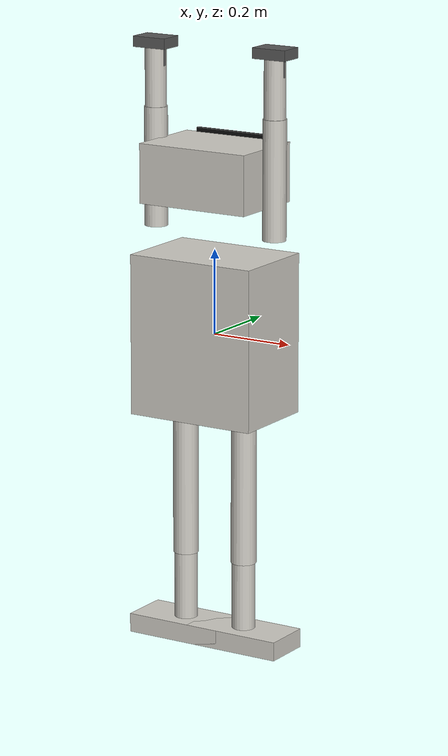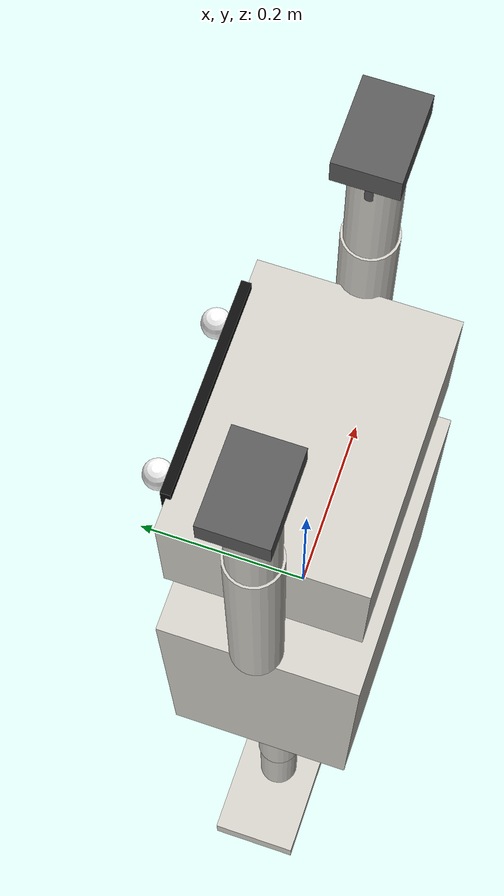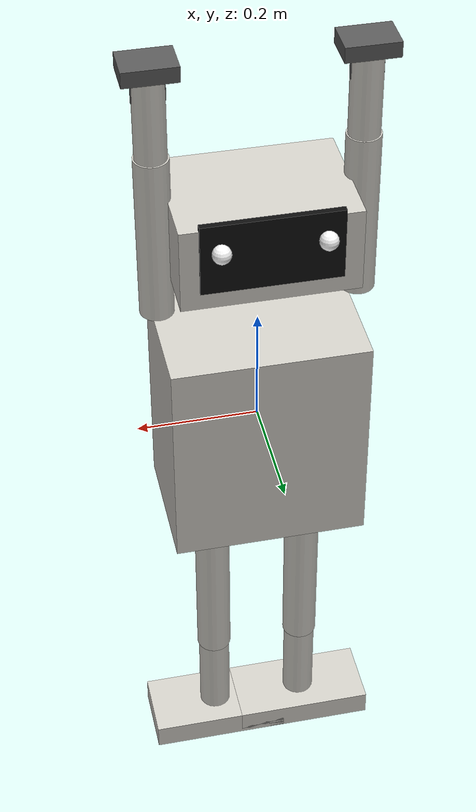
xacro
<?xml version="1.0"?>
<robot name="cori" xmlns:xacro="http://www.ros.org/wiki/xacro">

  <!-- Materials -->
  <material name="body_material">
    <color rgba="0.82 0.81 0.78 1.0"/> <!-- Light gray for body -->
  </material>
  <material name="joint_material">
    <color rgba="0.35 0.35 0.35 1.0"/> <!-- Dark gray for joints -->
  </material>
  <material name="screen_material">
    <color rgba="0.05 0.05 0.05 1.0"/> <!-- Black for screen -->
  </material>
  <material name="eye_material">
    <color rgba="1.0 1.0 1.0 1.0"/> <!-- White for eyes -->
  </material>

  <!-- Joint Properties Macro -->
  <xacro:macro name="joint_properties">
    <limit lower="-2.09" upper="2.09" effort="100.0" velocity="1.0"/>
    <dynamics damping="0.7" friction="0.9"/>
  </xacro:macro>

  <!-- Base Link -->
  <link name="base_link">
    <visual>
      <geometry>
        <cylinder radius="0.05" length="0.02"/>
      </geometry>
      <material name="joint_material"/>
    </visual>
    <collision>
      <geometry>
        <cylinder radius="0.05" length="0.02"/>
      </geometry>
    </collision>
    <inertial>
      <mass value="0.1"/>
      <inertia ixx="0.001" ixy="0.0" ixz="0.0" iyy="0.001" iyz="0.0" izz="0.001"/>
    </inertial>
  </link>

  <!-- Head Assembly -->
  <link name="head">
    <visual>
      <geometry>
        <box size="0.28 0.2 0.14"/>
      </geometry>
      <material name="body_material"/>
    </visual>
    <collision>
      <geometry>
        <box size="0.28 0.2 0.14"/>
      </geometry>
    </collision>
    <inertial>
      <mass value="1.5"/>
      <inertia ixx="0.015" ixy="0.0" ixz="0.0" iyy="0.015" iyz="0.0" izz="0.015"/>
    </inertial>
  </link>
  <joint name="neck_joint" type="revolute">
    <parent link="base_link"/>
    <child link="head"/>
    <axis xyz="0 0 1"/>
    <xacro:joint_properties/>
    <origin xyz="0 0 0.38" rpy="0 0 0"/>
  </joint>

  <link name="screen">
    <visual>
      <geometry>
        <box size="0.22 0.01 0.12"/>
      </geometry>
      <material name="screen_material"/>
    </visual>
    <collision>
      <geometry>
        <box size="0.22 0.01 0.12"/>
      </geometry>
    </collision>
    <inertial>
      <mass value="0.1"/>
      <inertia ixx="0.001" ixy="0.0" ixz="0.0" iyy="0.001" iyz="0.0" izz="0.001"/>
    </inertial>
  </link>
  <joint name="screen_joint" type="fixed">
    <parent link="head"/>
    <child link="screen"/>
    <origin xyz="0 0.1 0.02" rpy="0 0 0"/>
  </joint>

  <link name="left_eye">
    <visual>
      <geometry>
        <sphere radius="0.015"/>
      </geometry>
      <material name="eye_material"/>
    </visual>
    <collision>
      <geometry>
        <sphere radius="0.015"/>
      </geometry>
    </collision>
    <inertial>
      <mass value="0.01"/>
      <inertia ixx="0.0001" ixy="0.0" ixz="0.0" iyy="0.0001" iyz="0.0" izz="0.0001"/>
    </inertial>
  </link>
  <joint name="left_eye_joint" type="fixed">
    <parent link="screen"/>
    <child link="left_eye"/>
    <origin xyz="-0.08 0.02 0.02" rpy="0 0 0"/>
  </joint>

  <link name="right_eye">
    <visual>
      <geometry>
        <sphere radius="0.015"/>
      </geometry>
      <material name="eye_material"/>
    </visual>
    <collision>
      <geometry>
        <sphere radius="0.015"/>
      </geometry>
    </collision>
    <inertial>
      <mass value="0.01"/>
      <inertia ixx="0.0001" ixy="0.0" ixz="0.0" iyy="0.0001" iyz="0.0" izz="0.0001"/>
    </inertial>
  </link>
  <joint name="right_eye_joint" type="fixed">
    <parent link="screen"/>
    <child link="right_eye"/>
    <origin xyz="0.08 0.02 0.02" rpy="0 0 0"/>
  </joint>

  <!-- Torso Assembly -->
  <link name="torso">
    <visual>
      <geometry>
        <box size="0.32 0.22 0.38"/>
      </geometry>
      <material name="body_material"/>
    </visual>
    <collision>
      <geometry>
        <box size="0.32 0.22 0.38"/>
      </geometry>
    </collision>
    <inertial>
      <mass value="8.0"/>
      <inertia ixx="0.08" ixy="0.0" ixz="0.0" iyy="0.08" iyz="0.0" izz="0.08"/>
    </inertial>
  </link>
  <joint name="waist_joint" type="revolute">
    <parent link="base_link"/>
    <child link="torso"/>
    <axis xyz="0 0 1"/>
    <xacro:joint_properties/>
    <origin xyz="0 0 0" rpy="0 0 0"/>
  </joint>

  <!-- Finger Macro -->
  <xacro:macro name="finger" params="hand name offset">
    <link name="${hand}_finger_${name}">
      <visual>
        <geometry>
          <cylinder radius="0.006" length="0.06"/>
        </geometry>
        <material name="joint_material"/>
      </visual>
      <collision>
        <geometry>
          <cylinder radius="0.006" length="0.06"/>
        </geometry>
      </collision>
      <inertial>
        <mass value="0.1"/>
        <inertia ixx="0.0001" ixy="0.0" ixz="0.0" iyy="0.0001" iyz="0.0" izz="0.0001"/>
      </inertial>
    </link>
    <joint name="${hand}_finger_${name}_joint" type="revolute">
      <parent link="${hand}_hand_palm"/>
      <child link="${hand}_finger_${name}"/>
      <axis xyz="0 0 1"/>
      <limit lower="0.0" upper="1.57" effort="50.0" velocity="0.5"/>
      <dynamics damping="0.5" friction="0.7"/>
      <origin xyz="${offset} 0 -0.025" rpy="0 0 0"/>
    </joint>
  </xacro:macro>

  <!-- Left Arm -->
  <link name="left_arm_upper">
    <visual>
      <geometry>
        <cylinder radius="0.0275" length="0.28"/>
      </geometry>
      <material name="body_material"/>
    </visual>
    <collision>
      <geometry>
        <cylinder radius="0.0275" length="0.28"/>
      </geometry>
    </collision>
    <inertial>
      <mass value="1.2"/>
      <inertia ixx="0.012" ixy="0.0" ixz="0.0" iyy="0.012" iyz="0.0" izz="0.012"/>
    </inertial>
  </link>
  <joint name="left_shoulder_joint" type="revolute">
    <parent link="torso"/>
    <child link="left_arm_upper"/>
    <axis xyz="0 1 0"/>
    <xacro:joint_properties/>
    <origin xyz="-0.16 0 0.38" rpy="0 0 0"/>
  </joint>

  <link name="left_arm_elbow">
    <visual>
      <geometry>
        <cylinder radius="0.0225" length="0.04"/>
      </geometry>
      <material name="joint_material"/>
    </visual>
    <collision>
      <geometry>
        <cylinder radius="0.0225" length="0.04"/>
      </geometry>
    </collision>
    <inertial>
      <mass value="0.3"/>
      <inertia ixx="0.003" ixy="0.0" ixz="0.0" iyy="0.003" iyz="0.0" izz="0.003"/>
    </inertial>
  </link>
  <joint name="left_elbow_joint" type="revolute">
    <parent link="left_arm_upper"/>
    <child link="left_arm_elbow"/>
    <axis xyz="0 1 0"/>
    <xacro:joint_properties/>
    <origin xyz="0 0 0.14" rpy="0 0 0"/>
  </joint>

  <link name="left_arm_forearm">
    <visual>
      <geometry>
        <cylinder radius="0.025" length="0.26"/>
      </geometry>
      <material name="body_material"/>
    </visual>
    <collision>
      <geometry>
        <cylinder radius="0.025" length="0.26"/>
      </geometry>
    </collision>
    <inertial>
      <mass value="1.0"/>
      <inertia ixx="0.01" ixy="0.0" ixz="0.0" iyy="0.01" iyz="0.0" izz="0.01"/>
    </inertial>
  </link>
  <joint name="left_wrist_joint" type="revolute">
    <parent link="left_arm_elbow"/>
    <child link="left_arm_forearm"/>
    <axis xyz="0 1 0"/>
    <xacro:joint_properties/>
    <origin xyz="0 0 0.02" rpy="0 0 0"/>
  </joint>

  <link name="left_hand_palm">
    <visual>
      <geometry>
        <box size="0.085 0.06 0.025"/>
      </geometry>
      <material name="joint_material"/>
    </visual>
    <collision>
      <geometry>
        <box size="0.085 0.06 0.025"/>
      </geometry>
    </collision>
    <inertial>
      <mass value="0.6"/>
      <inertia ixx="0.0015" ixy="0.0" ixz="0.0" iyy="0.0015" iyz="0.0" izz="0.0015"/>
    </inertial>
  </link>
  <joint name="left_wrist_hand_joint" type="fixed">
    <parent link="left_arm_forearm"/>
    <child link="left_hand_palm"/>
    <origin xyz="0 0 0.13" rpy="0 0 0"/>
  </joint>

  <!-- Left Hand Fingers -->
  <xacro:finger hand="left" name="1" offset="-0.02"/>
  <xacro:finger hand="left" name="2" offset="-0.0067"/>
  <xacro:finger hand="left" name="3" offset="0.0067"/>
  <xacro:finger hand="left" name="4" offset="0.02"/>

  <!-- Right Arm (Mirrored) -->
  <link name="right_arm_upper">
    <visual>
      <geometry>
        <cylinder radius="0.0275" length="0.28"/>
      </geometry>
      <material name="body_material"/>
    </visual>
    <collision>
      <geometry>
        <cylinder radius="0.0275" length="0.28"/>
      </geometry>
    </collision>
    <inertial>
      <mass value="1.2"/>
      <inertia ixx="0.012" ixy="0.0" ixz="0.0" iyy="0.012" iyz="0.0" izz="0.012"/>
    </inertial>
  </link>
  <joint name="right_shoulder_joint" type="revolute">
    <parent link="torso"/>
    <child link="right_arm_upper"/>
    <axis xyz="0 1 0"/>
    <xacro:joint_properties/>
    <origin xyz="0.16 0 0.38" rpy="0 0 0"/>
  </joint>

  <link name="right_arm_elbow">
    <visual>
      <geometry>
        <cylinder radius="0.0225" length="0.04"/>
      </geometry>
      <material name="joint_material"/>
    </visual>
    <collision>
      <geometry>
        <cylinder radius="0.0225" length="0.04"/>
      </geometry>
    </collision>
    <inertial>
      <mass value="0.3"/>
      <inertia ixx="0.003" ixy="0.0" ixz="0.0" iyy="0.003" iyz="0.0" izz="0.003"/>
    </inertial>
  </link>
  <joint name="right_elbow_joint" type="revolute">
    <parent link="right_arm_upper"/>
    <child link="right_arm_elbow"/>
    <axis xyz="0 1 0"/>
    <xacro:joint_properties/>
    <origin xyz="0 0 0.14" rpy="0 0 0"/>
  </joint>

  <link name="right_arm_forearm">
    <visual>
      <geometry>
        <cylinder radius="0.025" length="0.26"/>
      </geometry>
      <material name="body_material"/>
    </visual>
    <collision>
      <geometry>
        <cylinder radius="0.025" length="0.26"/>
      </geometry>
    </collision>
    <inertial>
      <mass value="1.0"/>
      <inertia ixx="0.01" ixy="0.0" ixz="0.0" iyy="0.01" iyz="0.0" izz="0.01"/>
    </inertial>
  </link>
  <joint name="right_wrist_joint" type="revolute">
    <parent link="right_arm_elbow"/>
    <child link="right_arm_forearm"/>
    <axis xyz="0 1 0"/>
    <xacro:joint_properties/>
    <origin xyz="0 0 0.02" rpy="0 0 0"/>
  </joint>

  <link name="right_hand_palm">
    <visual>
      <geometry>
        <box size="0.085 0.06 0.025"/>
      </geometry>
      <material name="joint_material"/>
    </visual>
    <collision>
      <geometry>
        <box size="0.085 0.06 0.025"/>
      </geometry>
    </collision>
    <inertial>
      <mass value="0.6"/>
      <inertia ixx="0.0015" ixy="0.0" ixz="0.0" iyy="0.0015" iyz="0.0" izz="0.0015"/>
    </inertial>
  </link>
  <joint name="right_wrist_hand_joint" type="fixed">
    <parent link="right_arm_forearm"/>
    <child link="right_hand_palm"/>
    <origin xyz="0 0 0.13" rpy="0 0 0"/>
  </joint>

  <!-- Right Hand Fingers -->
  <xacro:finger hand="right" name="1" offset="-0.02"/>
  <xacro:finger hand="right" name="2" offset="-0.0067"/>
  <xacro:finger hand="right" name="3" offset="0.0067"/>
  <xacro:finger hand="right" name="4" offset="0.02"/>

  <!-- Left Leg -->
  <link name="left_leg_hip">
    <visual>
      <geometry>
        <cylinder radius="0.03" length="0.04"/>
      </geometry>
      <material name="joint_material"/>
    </visual>
    <collision>
      <geometry>
        <cylinder radius="0.03" length="0.04"/>
      </geometry>
    </collision>
    <inertial>
      <mass value="1.0"/>
      <inertia ixx="0.01" ixy="0.0" ixz="0.0" iyy="0.01" iyz="0.0" izz="0.01"/>
    </inertial>
  </link>
  <joint name="left_hip_joint" type="revolute">
    <parent link="torso"/>
    <child link="left_leg_hip"/>
    <axis xyz="0 1 0"/>
    <xacro:joint_properties/>
    <origin xyz="-0.08 0 -0.19" rpy="0 0 0"/>
  </joint>

  <link name="left_leg_thigh">
    <visual>
      <geometry>
        <cylinder radius="0.03" length="0.35"/>
      </geometry>
      <material name="body_material"/>
    </visual>
    <collision>
      <geometry>
        <cylinder radius="0.03" length="0.35"/>
      </geometry>
    </collision>
    <inertial>
      <mass value="1.5"/>
      <inertia ixx="0.015" ixy="0.0" ixz="0.0" iyy="0.015" iyz="0.0" izz="0.015"/>
    </inertial>
  </link>
  <joint name="left_knee_joint" type="revolute">
    <parent link="left_leg_hip"/>
    <child link="left_leg_thigh"/>
    <axis xyz="0 1 0"/>
    <xacro:joint_properties/>
    <origin xyz="0 0 -0.175" rpy="0 0 0"/>
  </joint>

  <link name="left_leg_shin">
    <visual>
      <geometry>
        <cylinder radius="0.0275" length="0.32"/>
      </geometry>
      <material name="body_material"/>
    </visual>
    <collision>
      <geometry>
        <cylinder radius="0.0275" length="0.32"/>
      </geometry>
    </collision>
    <inertial>
      <mass value="1.2"/>
      <inertia ixx="0.012" ixy="0.0" ixz="0.0" iyy="0.012" iyz="0.0" izz="0.012"/>
    </inertial>
  </link>
  <joint name="left_ankle_joint" type="revolute">
    <parent link="left_leg_thigh"/>
    <child link="left_leg_shin"/>
    <axis xyz="0 1 0"/>
    <xacro:joint_properties/>
    <origin xyz="0 0 -0.175" rpy="0 0 0"/>
  </joint>

  <link name="left_foot">
    <visual>
      <geometry>
        <box size="0.24 0.12 0.045"/>
      </geometry>
      <material name="body_material"/>
    </visual>
    <collision>
      <geometry>
        <box size="0.24 0.12 0.045"/>
      </geometry>
    </collision>
    <inertial>
      <mass value="1.5"/>
      <inertia ixx="0.015" ixy="0.0" ixz="0.0" iyy="0.015" iyz="0.0" izz="0.015"/>
    </inertial>
  </link>
  <joint name="left_ankle_foot_joint" type="fixed">
    <parent link="left_leg_shin"/>
    <child link="left_foot"/>
    <origin xyz="0 0 -0.1825" rpy="0 0 0"/>
  </joint>

  <!-- Right Leg (Mirrored) -->
  <link name="right_leg_hip">
    <visual>
      <geometry>
        <cylinder radius="0.03" length="0.04"/>
      </geometry>
      <material name="joint_material"/>
    </visual>
    <collision>
      <geometry>
        <cylinder radius="0.03" length="0.04"/>
      </geometry>
    </collision>
    <inertial>
      <mass value="1.0"/>
      <inertia ixx="0.01" ixy="0.0" ixz="0.0" iyy="0.01" iyz="0.0" izz="0.01"/>
    </inertial>
  </link>
  <joint name="right_hip_joint" type="revolute">
    <parent link="torso"/>
    <child link="right_leg_hip"/>
    <axis xyz="0 1 0"/>
    <xacro:joint_properties/>
    <origin xyz="0.08 0 -0.19" rpy="0 0 0"/>
  </joint>

  <link name="right_leg_thigh">
    <visual>
      <geometry>
        <cylinder radius="0.03" length="0.35"/>
      </geometry>
      <material name="body_material"/>
    </visual>
    <collision>
      <geometry>
        <cylinder radius="0.03" length="0.35"/>
      </geometry>
    </collision>
    <inertial>
      <mass value="1.5"/>
      <inertia ixx="0.015" ixy="0.0" ixz="0.0" iyy="0.015" iyz="0.0" izz="0.015"/>
    </inertial>
  </link>
  <joint name="right_knee_joint" type="revolute">
    <parent link="right_leg_hip"/>
    <child link="right_leg_thigh"/>
    <axis xyz="0 1 0"/>
    <xacro:joint_properties/>
    <origin xyz="0 0 -0.175" rpy="0 0 0"/>
  </joint>

  <link name="right_leg_shin">
    <visual>
      <geometry>
        <cylinder radius="0.0275" length="0.32"/>
      </geometry>
      <material name="body_material"/>
    </visual>
    <collision>
      <geometry>
        <cylinder radius="0.0275" length="0.32"/>
      </geometry>
    </collision>
    <inertial>
      <mass value="1.2"/>
      <inertia ixx="0.012" ixy="0.0" ixz="0.0" iyy="0.012" iyz="0.0" izz="0.012"/>
    </inertial>
  </link>
  <joint name="right_ankle_joint" type="revolute">
    <parent link="right_leg_thigh"/>
    <child link="right_leg_shin"/>
    <axis xyz="0 1 0"/>
    <xacro:joint_properties/>
    <origin xyz="0 0 -0.175" rpy="0 0 0"/>
  </joint>

  <link name="right_foot">
    <visual>
      <geometry>
        <box size="0.24 0.12 0.045"/>
      </geometry>
      <material name="body_material"/>
    </visual>
    <collision>
      <geometry>
        <box size="0.24 0.12 0.045"/>
      </geometry>
    </collision>
    <inertial>
      <mass value="1.5"/>
      <inertia ixx="0.015" ixy="0.0" ixz="0.0" iyy="0.015" iyz="0.0" izz="0.015"/>
    </inertial>
  </link>
  <joint name="right_ankle_foot_joint" type="fixed">
    <parent link="right_leg_shin"/>
    <child link="right_foot"/>
    <origin xyz="0 0 -0.1825" rpy="0 0 0"/>
  </joint>

  <!-- Gazebo Configuration -->
  <gazebo>
    <plugin name="ignition::gazebo::systems::JointStatePublisher" filename="ignition-gazebo-joint-state-publisher-system"/>
    <plugin name="ignition::gazebo::systems::JointPositionController" filename="ignition-gazebo-joint-position-controller-system"/>
  </gazebo>

</robot>
